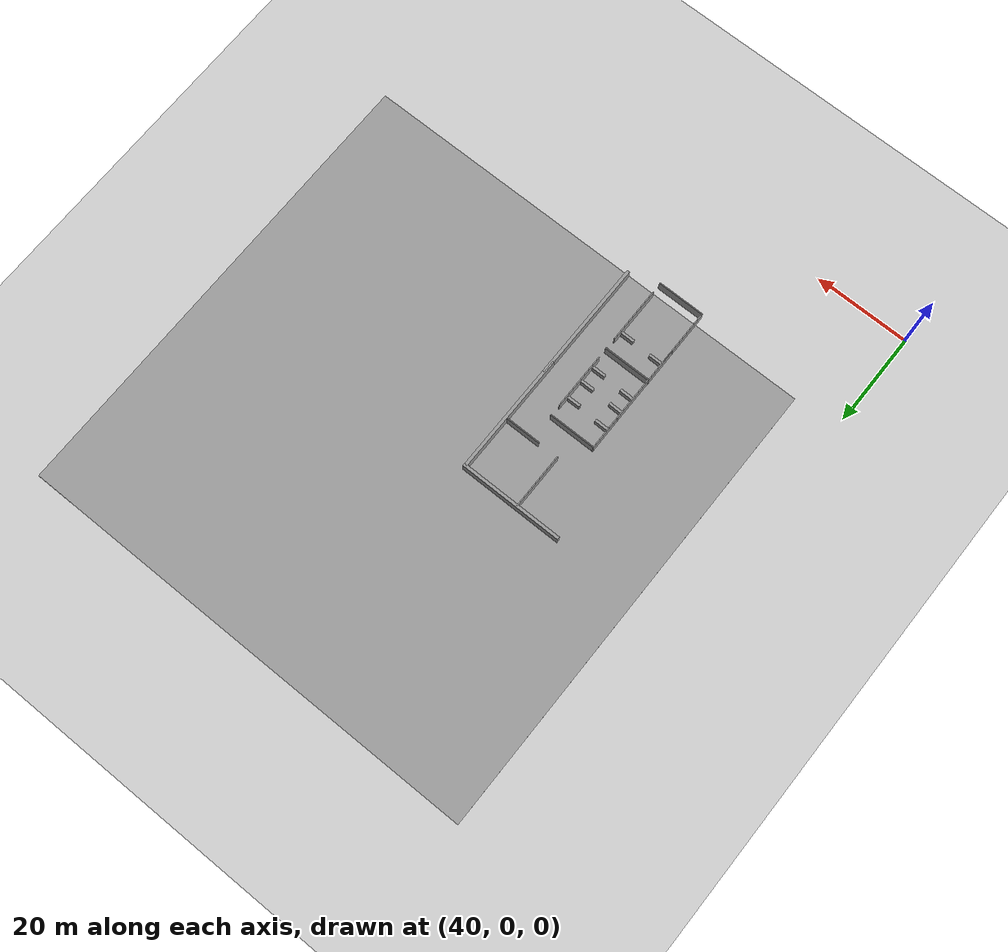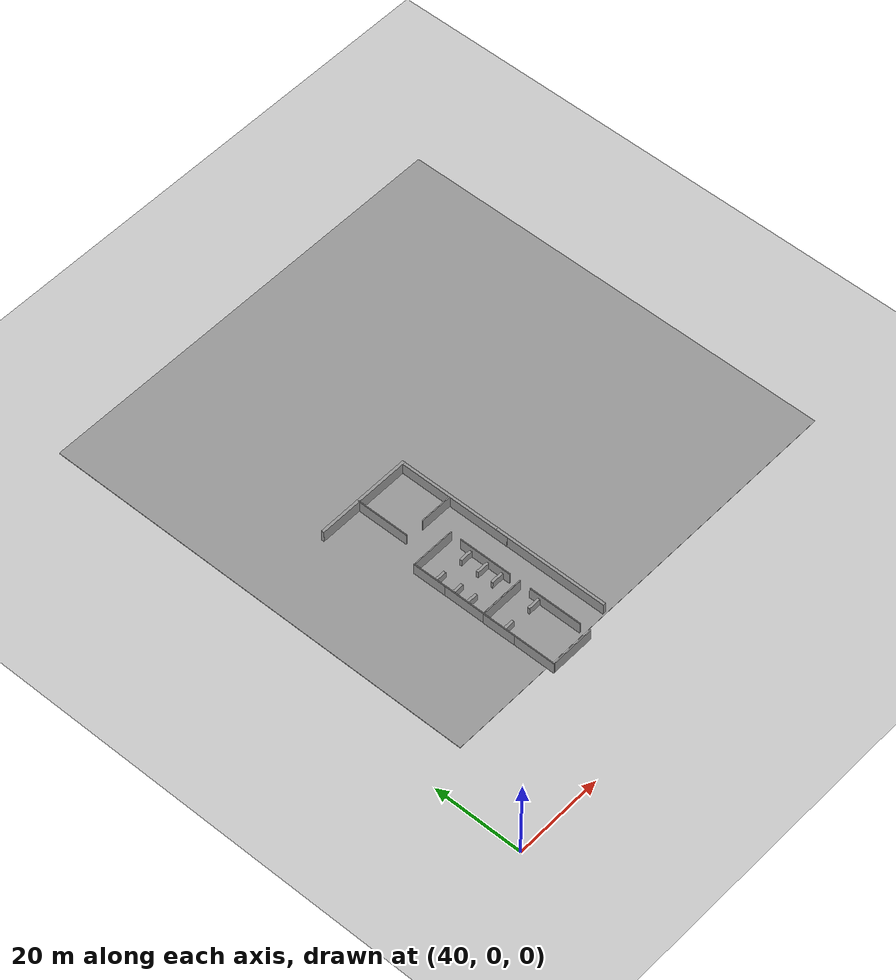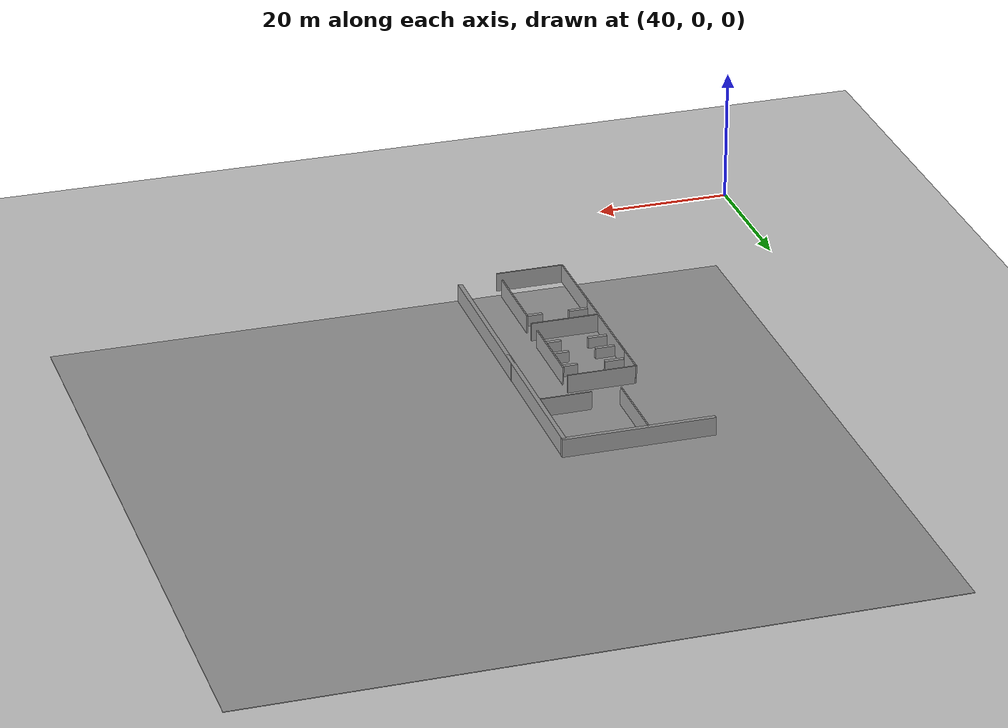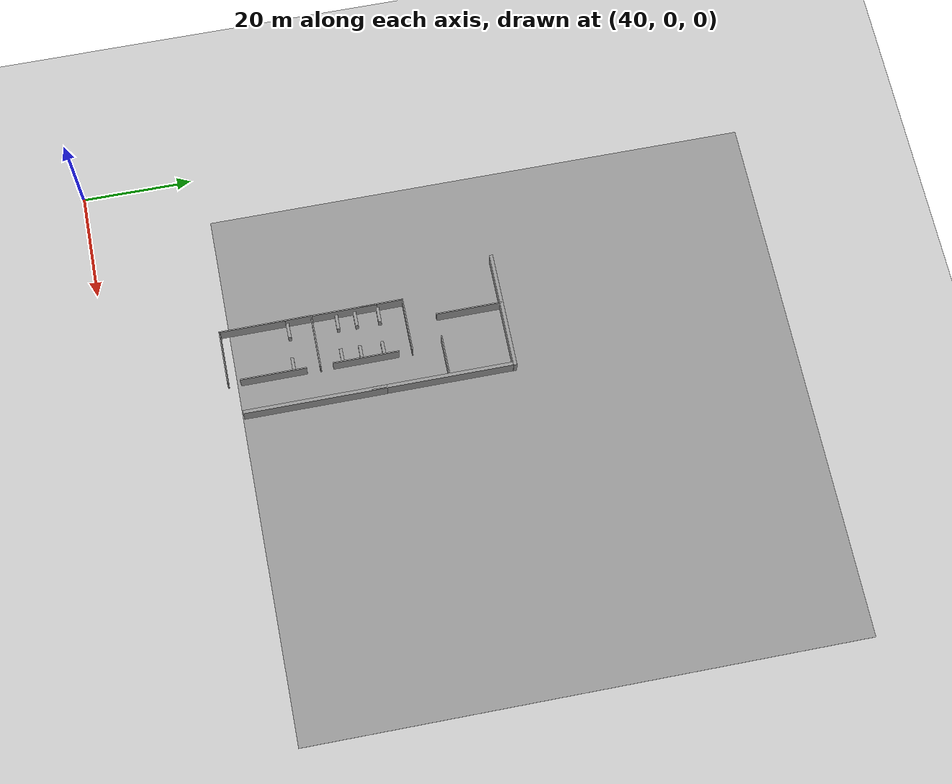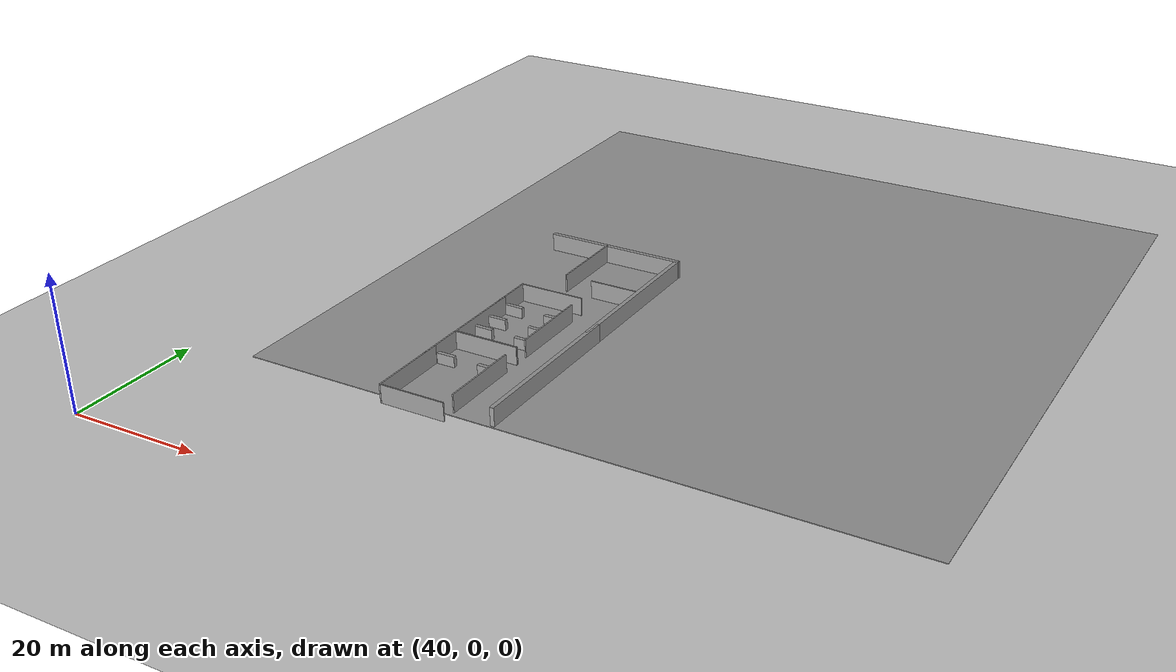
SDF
<sdf version="1.7">
 <world name="default">
  <model name="ground_plane">
   <static>1</static>
   <link name="link">
    <collision name="collision">
     <geometry><plane><normal>0 0 1</normal><size>100 100</size></plane></geometry>
     <surface><friction><ode><mu>100</mu><mu2>50</mu2></ode></friction></surface>
    </collision>
    <visual name="visual">
     <cast_shadows>0</cast_shadows>
     <geometry><plane><normal>0 0 1</normal><size>100 100</size></plane></geometry>
     <material>
      <script><uri>file://media/materials/scripts/gazebo.material</uri><name>Gazebo/Grey</name></script>
     </material>
    </visual>
   </link>
  </model>
  <model name="ground_plane_2">
   <static>1</static>
   <link name="link">
    <collision name="collision">
     <geometry><plane><normal>0 0 1</normal><size>100 100</size></plane></geometry>
     <surface><friction><ode><mu>100</mu><mu2>50</mu2></ode></friction></surface>
    </collision>
    <visual name="visual">
     <cast_shadows>0</cast_shadows>
     <geometry><plane><normal>0 0 1</normal><size>100 100</size></plane></geometry>
     <material>
      <script><uri>file://media/materials/scripts/gazebo.material</uri><name>Gazebo/Grey</name></script>
     </material>
    </visual>
   </link>
   <pose>99.3631 72.3911 0 0 -0 0</pose>
  </model>
  <model name="jiaoshi_clone_clone_clone_0_clone">
   <model name="grey_wall">
    <static>1</static>
    <link name="link">
     <pose>0 0 1.4 0 -0 0</pose>
     <collision name="collision"><geometry><box><size>7.5 0.2 2.8</size></box></geometry></collision>
     <visual name="visual">
      <cast_shadows>0</cast_shadows>
      <geometry><box><size>7.5 0.2 2.8</size></box></geometry>
      <material>
       <script>
        <uri>model://grey_wall/materials/scripts</uri>
        <uri>model://grey_wall/materials/textures</uri>
        <name>vrc/grey_wall</name>
       </script>
      </material>
     </visual>
    </link>
    <pose>-3.38172 4.2623 0 0 0 -1.56473</pose>
   </model>
   <model name="grey_wall_10m">
    <link name="link">
     <pose>1.25079 -0.023082 1.4 0 -0 0</pose>
     <inertial>
      <inertia><ixx>0</ixx><ixy>0</ixy><ixz>0</ixz><iyy>0</iyy><iyz>0</iyz><izz>0</izz></inertia>
      <mass>0</mass>
     </inertial>
     <visual name="visual">
      <cast_shadows>0</cast_shadows>
      <geometry><box><size>10.0157 0.2 2.8</size></box></geometry>
      <material>
       <script>
        <uri>model://grey_wall/materials/scripts</uri>
        <uri>model://grey_wall/materials/textures</uri>
        <name>vrc/grey_wall</name>
       </script>
       <shader type="pixel"/>
       <ambient>1 1 1 1</ambient>
       <diffuse>1 1 1 1</diffuse>
       <specular>0 0 0 1</specular>
       <emissive>0 0 0 1</emissive>
      </material>
     </visual>
     <collision name="collision">
      <geometry><box><size>10.0157 0.2 2.8</size></box></geometry>
      <surface>
       <friction>
        <ode><mu>1</mu><mu2>1</mu2><fdir1>0 0 0</fdir1><slip1>0</slip1><slip2>0</slip2></ode>
        <torsional>
         <coefficient>1</coefficient>
         <patch_radius>0</patch_radius>
         <surface_radius>0</surface_radius>
         <use_patch_radius>1</use_patch_radius>
         <ode><slip>0</slip></ode>
        </torsional>
       </friction>
       <bounce><restitution_coefficient>0</restitution_coefficient><threshold>1e+06</threshold></bounce>
       <contact>
        <collide_without_contact>0</collide_without_contact>
        <collide_without_contact_bitmask>1</collide_without_contact_bitmask>
        <collide_bitmask>1</collide_bitmask>
        <ode>
         <soft_cfm>0</soft_cfm>
         <soft_erp>0.2</soft_erp>
         <kp>1e+13</kp>
         <kd>1</kd>
         <max_vel>0.01</max_vel>
         <min_depth>0</min_depth>
        </ode>
        <bullet>
         <split_impulse>1</split_impulse>
         <split_impulse_penetration_threshold>-0.01</split_impulse_penetration_threshold>
         <soft_cfm>0</soft_cfm>
         <soft_erp>0.2</soft_erp>
         <kp>1e+13</kp>
         <kd>1</kd>
        </bullet>
       </contact>
      </surface>
     </collision>
    </link>
    <static>1</static>
    <pose>0.433183 -8.77625 0 0 -0 0</pose>
   </model>
   <model name="grey_wall_10m_0">
    <link name="link">
     <pose>1.25079 -0.023082 1.4 0 -0 0</pose>
     <inertial>
      <inertia><ixx>0</ixx><ixy>0</ixy><ixz>0</ixz><iyy>0</iyy><iyz>0</iyz><izz>0</izz></inertia>
      <mass>0</mass>
     </inertial>
     <visual name="visual">
      <cast_shadows>0</cast_shadows>
      <geometry><box><size>10.0157 0.2 2.8</size></box></geometry>
      <material>
       <script>
        <uri>model://grey_wall/materials/scripts</uri>
        <uri>model://grey_wall/materials/textures</uri>
        <name>vrc/grey_wall</name>
       </script>
       <shader type="pixel"/>
       <ambient>1 1 1 1</ambient>
       <diffuse>1 1 1 1</diffuse>
       <specular>0 0 0 1</specular>
       <emissive>0 0 0 1</emissive>
      </material>
     </visual>
     <collision name="collision">
      <geometry><box><size>10.0157 0.2 2.8</size></box></geometry>
      <surface>
       <friction>
        <ode><mu>1</mu><mu2>1</mu2><fdir1>0 0 0</fdir1><slip1>0</slip1><slip2>0</slip2></ode>
        <torsional>
         <coefficient>1</coefficient>
         <patch_radius>0</patch_radius>
         <surface_radius>0</surface_radius>
         <use_patch_radius>1</use_patch_radius>
         <ode><slip>0</slip></ode>
        </torsional>
       </friction>
       <bounce><restitution_coefficient>0</restitution_coefficient><threshold>1e+06</threshold></bounce>
       <contact>
        <collide_without_contact>0</collide_without_contact>
        <collide_without_contact_bitmask>1</collide_without_contact_bitmask>
        <collide_bitmask>1</collide_bitmask>
        <ode>
         <soft_cfm>0</soft_cfm>
         <soft_erp>0.2</soft_erp>
         <kp>1e+13</kp>
         <kd>1</kd>
         <max_vel>0.01</max_vel>
         <min_depth>0</min_depth>
        </ode>
        <bullet>
         <split_impulse>1</split_impulse>
         <split_impulse_penetration_threshold>-0.01</split_impulse_penetration_threshold>
         <soft_cfm>0</soft_cfm>
         <soft_erp>0.2</soft_erp>
         <kp>1e+13</kp>
         <kd>1</kd>
        </bullet>
       </contact>
      </surface>
     </collision>
    </link>
    <static>1</static>
    <pose>0.377364 7.92573 0 0 -0 0</pose>
   </model>
   <model name="grey_wall_12m_vertial">
    <link name="link">
     <pose>0.289112 -0.003891 1.4 0 0 -1.5701</pose>
     <inertial>
      <inertia><ixx>0</ixx><ixy>0</ixy><ixz>0</ixz><iyy>0</iyy><iyz>0</iyz><izz>0</izz></inertia>
      <mass>0</mass>
     </inertial>
     <visual name="visual">
      <cast_shadows>0</cast_shadows>
      <geometry><box><size>12.0527 0.2 2.8</size></box></geometry>
      <material>
       <script>
        <uri>model://grey_wall/materials/scripts</uri>
        <uri>model://grey_wall/materials/textures</uri>
        <name>vrc/grey_wall</name>
       </script>
       <shader type="pixel"/>
       <ambient>1 1 1 1</ambient>
       <diffuse>1 1 1 1</diffuse>
       <specular>0 0 0 1</specular>
       <emissive>0 0 0 1</emissive>
      </material>
     </visual>
     <collision name="collision">
      <geometry><box><size>12.0527 0.2 2.8</size></box></geometry>
      <surface>
       <friction>
        <ode><mu>1</mu><mu2>1</mu2><fdir1>0 0 0</fdir1><slip1>0</slip1><slip2>0</slip2></ode>
        <torsional>
         <coefficient>1</coefficient>
         <patch_radius>0</patch_radius>
         <surface_radius>0</surface_radius>
         <use_patch_radius>1</use_patch_radius>
         <ode><slip>0</slip></ode>
        </torsional>
       </friction>
       <bounce><restitution_coefficient>0</restitution_coefficient><threshold>1e+06</threshold></bounce>
       <contact>
        <collide_without_contact>0</collide_without_contact>
        <collide_without_contact_bitmask>1</collide_without_contact_bitmask>
        <collide_bitmask>1</collide_bitmask>
        <ode>
         <soft_cfm>0</soft_cfm>
         <soft_erp>0.2</soft_erp>
         <kp>1e+13</kp>
         <kd>1</kd>
         <max_vel>0.01</max_vel>
         <min_depth>0</min_depth>
        </ode>
        <bullet>
         <split_impulse>1</split_impulse>
         <split_impulse_penetration_threshold>-0.01</split_impulse_penetration_threshold>
         <soft_cfm>0</soft_cfm>
         <soft_erp>0.2</soft_erp>
         <kp>1e+13</kp>
         <kd>1</kd>
        </bullet>
       </contact>
      </surface>
     </collision>
    </link>
    <static>1</static>
    <pose>-3.63668 -2.87268 0 0 -0 0</pose>
   </model>
   <model name="grey_wall_12m_vertial_0">
    <link name="link">
     <pose>0.289112 -0.003891 1.4 0 0 -1.5701</pose>
     <inertial>
      <inertia><ixx>0</ixx><ixy>0</ixy><ixz>0</ixz><iyy>0</iyy><iyz>0</iyz><izz>0</izz></inertia>
      <mass>0</mass>
     </inertial>
     <visual name="visual">
      <cast_shadows>0</cast_shadows>
      <geometry><box><size>12.0527 0.2 2.8</size></box></geometry>
      <material>
       <script>
        <uri>model://grey_wall/materials/scripts</uri>
        <uri>model://grey_wall/materials/textures</uri>
        <name>vrc/grey_wall</name>
       </script>
       <shader type="pixel"/>
       <ambient>1 1 1 1</ambient>
       <diffuse>1 1 1 1</diffuse>
       <specular>0 0 0 1</specular>
       <emissive>0 0 0 1</emissive>
      </material>
     </visual>
     <collision name="collision">
      <geometry><box><size>12.0527 0.2 2.8</size></box></geometry>
      <surface>
       <friction>
        <ode><mu>1</mu><mu2>1</mu2><fdir1>0 0 0</fdir1><slip1>0</slip1><slip2>0</slip2></ode>
        <torsional>
         <coefficient>1</coefficient>
         <patch_radius>0</patch_radius>
         <surface_radius>0</surface_radius>
         <use_patch_radius>1</use_patch_radius>
         <ode><slip>0</slip></ode>
        </torsional>
       </friction>
       <bounce><restitution_coefficient>0</restitution_coefficient><threshold>1e+06</threshold></bounce>
       <contact>
        <collide_without_contact>0</collide_without_contact>
        <collide_without_contact_bitmask>1</collide_without_contact_bitmask>
        <collide_bitmask>1</collide_bitmask>
        <ode>
         <soft_cfm>0</soft_cfm>
         <soft_erp>0.2</soft_erp>
         <kp>1e+13</kp>
         <kd>1</kd>
         <max_vel>0.01</max_vel>
         <min_depth>0</min_depth>
        </ode>
        <bullet>
         <split_impulse>1</split_impulse>
         <split_impulse_penetration_threshold>-0.01</split_impulse_penetration_threshold>
         <soft_cfm>0</soft_cfm>
         <soft_erp>0.2</soft_erp>
         <kp>1e+13</kp>
         <kd>1</kd>
        </bullet>
       </contact>
      </surface>
     </collision>
    </link>
    <static>1</static>
    <pose>6.20786 -0.539083 0 0 -0 0</pose>
   </model>
   <static>0</static>
   <pose>76.0453 46.3831 0 0 -0 0</pose>
  </model>
  <model name="jiaoshi_clone_clone_clone_0_clone_0">
   <model name="grey_wall">
    <static>1</static>
    <link name="link">
     <pose>0 0 1.4 0 -0 0</pose>
     <collision name="collision"><geometry><box><size>7.5 0.2 2.8</size></box></geometry></collision>
     <visual name="visual">
      <cast_shadows>0</cast_shadows>
      <geometry><box><size>7.5 0.2 2.8</size></box></geometry>
      <material>
       <script>
        <uri>model://grey_wall/materials/scripts</uri>
        <uri>model://grey_wall/materials/textures</uri>
        <name>vrc/grey_wall</name>
       </script>
      </material>
     </visual>
    </link>
    <pose>-3.38172 4.2623 0 0 0 -1.56473</pose>
   </model>
   <model name="grey_wall_10m">
    <link name="link">
     <pose>1.25079 -0.023082 1.4 0 -0 0</pose>
     <inertial>
      <inertia><ixx>0</ixx><ixy>0</ixy><ixz>0</ixz><iyy>0</iyy><iyz>0</iyz><izz>0</izz></inertia>
      <mass>0</mass>
     </inertial>
     <visual name="visual">
      <cast_shadows>0</cast_shadows>
      <geometry><box><size>10.0157 0.2 2.8</size></box></geometry>
      <material>
       <script>
        <uri>model://grey_wall/materials/scripts</uri>
        <uri>model://grey_wall/materials/textures</uri>
        <name>vrc/grey_wall</name>
       </script>
       <shader type="pixel"/>
       <ambient>1 1 1 1</ambient>
       <diffuse>1 1 1 1</diffuse>
       <specular>0 0 0 1</specular>
       <emissive>0 0 0 1</emissive>
      </material>
     </visual>
     <collision name="collision">
      <geometry><box><size>10.0157 0.2 2.8</size></box></geometry>
      <surface>
       <friction>
        <ode><mu>1</mu><mu2>1</mu2><fdir1>0 0 0</fdir1><slip1>0</slip1><slip2>0</slip2></ode>
        <torsional>
         <coefficient>1</coefficient>
         <patch_radius>0</patch_radius>
         <surface_radius>0</surface_radius>
         <use_patch_radius>1</use_patch_radius>
         <ode><slip>0</slip></ode>
        </torsional>
       </friction>
       <bounce><restitution_coefficient>0</restitution_coefficient><threshold>1e+06</threshold></bounce>
       <contact>
        <collide_without_contact>0</collide_without_contact>
        <collide_without_contact_bitmask>1</collide_without_contact_bitmask>
        <collide_bitmask>1</collide_bitmask>
        <ode>
         <soft_cfm>0</soft_cfm>
         <soft_erp>0.2</soft_erp>
         <kp>1e+13</kp>
         <kd>1</kd>
         <max_vel>0.01</max_vel>
         <min_depth>0</min_depth>
        </ode>
        <bullet>
         <split_impulse>1</split_impulse>
         <split_impulse_penetration_threshold>-0.01</split_impulse_penetration_threshold>
         <soft_cfm>0</soft_cfm>
         <soft_erp>0.2</soft_erp>
         <kp>1e+13</kp>
         <kd>1</kd>
        </bullet>
       </contact>
      </surface>
     </collision>
    </link>
    <static>1</static>
    <pose>0.433183 -8.77625 0 0 -0 0</pose>
   </model>
   <model name="grey_wall_10m_0">
    <link name="link">
     <pose>1.25079 -0.023082 1.4 0 -0 0</pose>
     <inertial>
      <inertia><ixx>0</ixx><ixy>0</ixy><ixz>0</ixz><iyy>0</iyy><iyz>0</iyz><izz>0</izz></inertia>
      <mass>0</mass>
     </inertial>
     <visual name="visual">
      <cast_shadows>0</cast_shadows>
      <geometry><box><size>10.0157 0.2 2.8</size></box></geometry>
      <material>
       <script>
        <uri>model://grey_wall/materials/scripts</uri>
        <uri>model://grey_wall/materials/textures</uri>
        <name>vrc/grey_wall</name>
       </script>
       <shader type="pixel"/>
       <ambient>1 1 1 1</ambient>
       <diffuse>1 1 1 1</diffuse>
       <specular>0 0 0 1</specular>
       <emissive>0 0 0 1</emissive>
      </material>
     </visual>
     <collision name="collision">
      <geometry><box><size>10.0157 0.2 2.8</size></box></geometry>
      <surface>
       <friction>
        <ode><mu>1</mu><mu2>1</mu2><fdir1>0 0 0</fdir1><slip1>0</slip1><slip2>0</slip2></ode>
        <torsional>
         <coefficient>1</coefficient>
         <patch_radius>0</patch_radius>
         <surface_radius>0</surface_radius>
         <use_patch_radius>1</use_patch_radius>
         <ode><slip>0</slip></ode>
        </torsional>
       </friction>
       <bounce><restitution_coefficient>0</restitution_coefficient><threshold>1e+06</threshold></bounce>
       <contact>
        <collide_without_contact>0</collide_without_contact>
        <collide_without_contact_bitmask>1</collide_without_contact_bitmask>
        <collide_bitmask>1</collide_bitmask>
        <ode>
         <soft_cfm>0</soft_cfm>
         <soft_erp>0.2</soft_erp>
         <kp>1e+13</kp>
         <kd>1</kd>
         <max_vel>0.01</max_vel>
         <min_depth>0</min_depth>
        </ode>
        <bullet>
         <split_impulse>1</split_impulse>
         <split_impulse_penetration_threshold>-0.01</split_impulse_penetration_threshold>
         <soft_cfm>0</soft_cfm>
         <soft_erp>0.2</soft_erp>
         <kp>1e+13</kp>
         <kd>1</kd>
        </bullet>
       </contact>
      </surface>
     </collision>
    </link>
    <static>1</static>
    <pose>0.377364 7.92573 0 0 -0 0</pose>
   </model>
   <model name="grey_wall_12m_vertial">
    <link name="link">
     <pose>0.289112 -0.003891 1.4 0 0 -1.5701</pose>
     <inertial>
      <inertia><ixx>0</ixx><ixy>0</ixy><ixz>0</ixz><iyy>0</iyy><iyz>0</iyz><izz>0</izz></inertia>
      <mass>0</mass>
     </inertial>
     <visual name="visual">
      <cast_shadows>0</cast_shadows>
      <geometry><box><size>12.0527 0.2 2.8</size></box></geometry>
      <material>
       <script>
        <uri>model://grey_wall/materials/scripts</uri>
        <uri>model://grey_wall/materials/textures</uri>
        <name>vrc/grey_wall</name>
       </script>
       <shader type="pixel"/>
       <ambient>1 1 1 1</ambient>
       <diffuse>1 1 1 1</diffuse>
       <specular>0 0 0 1</specular>
       <emissive>0 0 0 1</emissive>
      </material>
     </visual>
     <collision name="collision">
      <geometry><box><size>12.0527 0.2 2.8</size></box></geometry>
      <surface>
       <friction>
        <ode><mu>1</mu><mu2>1</mu2><fdir1>0 0 0</fdir1><slip1>0</slip1><slip2>0</slip2></ode>
        <torsional>
         <coefficient>1</coefficient>
         <patch_radius>0</patch_radius>
         <surface_radius>0</surface_radius>
         <use_patch_radius>1</use_patch_radius>
         <ode><slip>0</slip></ode>
        </torsional>
       </friction>
       <bounce><restitution_coefficient>0</restitution_coefficient><threshold>1e+06</threshold></bounce>
       <contact>
        <collide_without_contact>0</collide_without_contact>
        <collide_without_contact_bitmask>1</collide_without_contact_bitmask>
        <collide_bitmask>1</collide_bitmask>
        <ode>
         <soft_cfm>0</soft_cfm>
         <soft_erp>0.2</soft_erp>
         <kp>1e+13</kp>
         <kd>1</kd>
         <max_vel>0.01</max_vel>
         <min_depth>0</min_depth>
        </ode>
        <bullet>
         <split_impulse>1</split_impulse>
         <split_impulse_penetration_threshold>-0.01</split_impulse_penetration_threshold>
         <soft_cfm>0</soft_cfm>
         <soft_erp>0.2</soft_erp>
         <kp>1e+13</kp>
         <kd>1</kd>
        </bullet>
       </contact>
      </surface>
     </collision>
    </link>
    <static>1</static>
    <pose>-3.63668 -2.87268 0 0 -0 0</pose>
   </model>
   <model name="grey_wall_12m_vertial_0">
    <link name="link">
     <pose>0.289112 -0.003891 1.4 0 0 -1.5701</pose>
     <inertial>
      <inertia><ixx>0</ixx><ixy>0</ixy><ixz>0</ixz><iyy>0</iyy><iyz>0</iyz><izz>0</izz></inertia>
      <mass>0</mass>
     </inertial>
     <visual name="visual">
      <cast_shadows>0</cast_shadows>
      <geometry><box><size>12.0527 0.2 2.8</size></box></geometry>
      <material>
       <script>
        <uri>model://grey_wall/materials/scripts</uri>
        <uri>model://grey_wall/materials/textures</uri>
        <name>vrc/grey_wall</name>
       </script>
       <shader type="pixel"/>
       <ambient>1 1 1 1</ambient>
       <diffuse>1 1 1 1</diffuse>
       <specular>0 0 0 1</specular>
       <emissive>0 0 0 1</emissive>
      </material>
     </visual>
     <collision name="collision">
      <geometry><box><size>12.0527 0.2 2.8</size></box></geometry>
      <surface>
       <friction>
        <ode><mu>1</mu><mu2>1</mu2><fdir1>0 0 0</fdir1><slip1>0</slip1><slip2>0</slip2></ode>
        <torsional>
         <coefficient>1</coefficient>
         <patch_radius>0</patch_radius>
         <surface_radius>0</surface_radius>
         <use_patch_radius>1</use_patch_radius>
         <ode><slip>0</slip></ode>
        </torsional>
       </friction>
       <bounce><restitution_coefficient>0</restitution_coefficient><threshold>1e+06</threshold></bounce>
       <contact>
        <collide_without_contact>0</collide_without_contact>
        <collide_without_contact_bitmask>1</collide_without_contact_bitmask>
        <collide_bitmask>1</collide_bitmask>
        <ode>
         <soft_cfm>0</soft_cfm>
         <soft_erp>0.2</soft_erp>
         <kp>1e+13</kp>
         <kd>1</kd>
         <max_vel>0.01</max_vel>
         <min_depth>0</min_depth>
        </ode>
        <bullet>
         <split_impulse>1</split_impulse>
         <split_impulse_penetration_threshold>-0.01</split_impulse_penetration_threshold>
         <soft_cfm>0</soft_cfm>
         <soft_erp>0.2</soft_erp>
         <kp>1e+13</kp>
         <kd>1</kd>
        </bullet>
       </contact>
      </surface>
     </collision>
    </link>
    <static>1</static>
    <pose>6.20786 -0.539083 0 0 -0 0</pose>
   </model>
   <static>0</static>
   <pose>76.058 29.6154 0 0 -0 0</pose>
  </model>
  <model name="grew_wall_long_vertial_1_clone_clone_1_clone_0">
   <model name="grey_wall_long">
    <link name="link">
     <pose>0 0 1.37589 0 -0 0</pose>
     <inertial>
      <inertia><ixx>0</ixx><ixy>0</ixy><ixz>0</ixz><iyy>0</iyy><iyz>0</iyz><izz>0</izz></inertia>
      <mass>0</mass>
     </inertial>
     <visual name="visual">
      <cast_shadows>0</cast_shadows>
      <geometry><box><size>25.8815 0.642976 2.8</size></box></geometry>
      <material>
       <script>
        <uri>model://grey_wall/materials/scripts</uri>
        <uri>model://grey_wall/materials/textures</uri>
        <name>vrc/grey_wall</name>
       </script>
       <shader type="pixel"><normal_map>__default__</normal_map></shader>
       <ambient>1 1 1 1</ambient>
       <diffuse>1 1 1 1</diffuse>
       <specular>0 0 0 1</specular>
       <emissive>0 0 0 1</emissive>
      </material>
     </visual>
     <collision name="collision">
      <geometry><box><size>25.8815 0.642976 2.8</size></box></geometry>
      <surface>
       <friction>
        <ode><mu>1</mu><mu2>1</mu2><fdir1>0 0 0</fdir1><slip1>0</slip1><slip2>0</slip2></ode>
        <torsional>
         <coefficient>1</coefficient>
         <patch_radius>0</patch_radius>
         <surface_radius>0</surface_radius>
         <use_patch_radius>1</use_patch_radius>
         <ode><slip>0</slip></ode>
        </torsional>
       </friction>
       <bounce><restitution_coefficient>0</restitution_coefficient><threshold>1e+06</threshold></bounce>
       <contact>
        <collide_without_contact>0</collide_without_contact>
        <collide_without_contact_bitmask>1</collide_without_contact_bitmask>
        <collide_bitmask>1</collide_bitmask>
        <ode>
         <soft_cfm>0</soft_cfm>
         <soft_erp>0.2</soft_erp>
         <kp>1e+13</kp>
         <kd>1</kd>
         <max_vel>0.01</max_vel>
         <min_depth>0</min_depth>
        </ode>
        <bullet>
         <split_impulse>1</split_impulse>
         <split_impulse_penetration_threshold>-0.01</split_impulse_penetration_threshold>
         <soft_cfm>0</soft_cfm>
         <soft_erp>0.2</soft_erp>
         <kp>1e+13</kp>
         <kd>1</kd>
        </bullet>
       </contact>
      </surface>
     </collision>
    </link>
    <static>1</static>
    <pose>1e-06 -0 0 0 -0 1.57003</pose>
   </model>
   <static>0</static>
   <pose>88.8179 35.6019 0 0 -0 0</pose>
  </model>
  <model name="grew_wall_long_vertial_1_clone_clone_1_clone_1">
   <model name="grey_wall_long">
    <link name="link">
     <pose>0 0 1.37589 0 -0 0</pose>
     <inertial>
      <inertia><ixx>0</ixx><ixy>0</ixy><ixz>0</ixz><iyy>0</iyy><iyz>0</iyz><izz>0</izz></inertia>
      <mass>0</mass>
     </inertial>
     <visual name="visual">
      <cast_shadows>0</cast_shadows>
      <geometry><box><size>25.8815 0.642976 2.8</size></box></geometry>
      <material>
       <script>
        <uri>model://grey_wall/materials/scripts</uri>
        <uri>model://grey_wall/materials/textures</uri>
        <name>vrc/grey_wall</name>
       </script>
       <shader type="pixel"><normal_map>__default__</normal_map></shader>
       <ambient>1 1 1 1</ambient>
       <diffuse>1 1 1 1</diffuse>
       <specular>0 0 0 1</specular>
       <emissive>0 0 0 1</emissive>
      </material>
     </visual>
     <collision name="collision">
      <geometry><box><size>25.8815 0.642976 2.8</size></box></geometry>
      <surface>
       <friction>
        <ode><mu>1</mu><mu2>1</mu2><fdir1>0 0 0</fdir1><slip1>0</slip1><slip2>0</slip2></ode>
        <torsional>
         <coefficient>1</coefficient>
         <patch_radius>0</patch_radius>
         <surface_radius>0</surface_radius>
         <use_patch_radius>1</use_patch_radius>
         <ode><slip>0</slip></ode>
        </torsional>
       </friction>
       <bounce><restitution_coefficient>0</restitution_coefficient><threshold>1e+06</threshold></bounce>
       <contact>
        <collide_without_contact>0</collide_without_contact>
        <collide_without_contact_bitmask>1</collide_without_contact_bitmask>
        <collide_bitmask>1</collide_bitmask>
        <ode>
         <soft_cfm>0</soft_cfm>
         <soft_erp>0.2</soft_erp>
         <kp>1e+13</kp>
         <kd>1</kd>
         <max_vel>0.01</max_vel>
         <min_depth>0</min_depth>
        </ode>
        <bullet>
         <split_impulse>1</split_impulse>
         <split_impulse_penetration_threshold>-0.01</split_impulse_penetration_threshold>
         <soft_cfm>0</soft_cfm>
         <soft_erp>0.2</soft_erp>
         <kp>1e+13</kp>
         <kd>1</kd>
        </bullet>
       </contact>
      </surface>
     </collision>
    </link>
    <static>1</static>
    <pose>1e-06 -0 0 0 -0 1.57003</pose>
   </model>
   <static>0</static>
   <pose>88.8126 58.7743 0 0 -0 0</pose>
  </model>
  <model name="grey_wall_long_term_clone_0_clone">
   <link name="link">
    <pose>-1.74587 -0.378849 1.37589 0 -0 0</pose>
    <inertial>
     <inertia><ixx>0</ixx><ixy>0</ixy><ixz>0</ixz><iyy>0</iyy><iyz>0</iyz><izz>0</izz></inertia>
     <mass>0</mass>
    </inertial>
    <visual name="visual">
     <cast_shadows>0</cast_shadows>
     <geometry><box><size>22.1596 0.642976 2.8</size></box></geometry>
     <material>
      <script>
       <uri>model://grey_wall/materials/scripts</uri>
       <uri>model://grey_wall/materials/textures</uri>
       <name>vrc/grey_wall</name>
      </script>
      <shader type="pixel"><normal_map>__default__</normal_map></shader>
      <ambient>1 1 1 1</ambient>
      <diffuse>1 1 1 1</diffuse>
      <specular>0 0 0 1</specular>
      <emissive>0 0 0 1</emissive>
     </material>
    </visual>
    <collision name="collision">
     <geometry><box><size>22.1596 0.642976 2.8</size></box></geometry>
     <surface>
      <friction>
       <ode><mu>1</mu><mu2>1</mu2><fdir1>0 0 0</fdir1><slip1>0</slip1><slip2>0</slip2></ode>
       <torsional>
        <coefficient>1</coefficient>
        <patch_radius>0</patch_radius>
        <surface_radius>0</surface_radius>
        <use_patch_radius>1</use_patch_radius>
        <ode><slip>0</slip></ode>
       </torsional>
      </friction>
      <bounce><restitution_coefficient>0</restitution_coefficient><threshold>1e+06</threshold></bounce>
      <contact>
       <collide_without_contact>0</collide_without_contact>
       <collide_without_contact_bitmask>1</collide_without_contact_bitmask>
       <collide_bitmask>1</collide_bitmask>
       <ode>
        <soft_cfm>0</soft_cfm>
        <soft_erp>0.2</soft_erp>
        <kp>1e+13</kp>
        <kd>1</kd>
        <max_vel>0.01</max_vel>
        <min_depth>0</min_depth>
       </ode>
       <bullet>
        <split_impulse>1</split_impulse>
        <split_impulse_penetration_threshold>-0.01</split_impulse_penetration_threshold>
        <soft_cfm>0</soft_cfm>
        <soft_erp>0.2</soft_erp>
        <kp>1e+13</kp>
        <kd>1</kd>
       </bullet>
      </contact>
     </surface>
    </collision>
   </link>
   <static>1</static>
   <pose>79.8463 72.1693 0 0 -0 0</pose>
  </model>
  <model name="grey_wall_12m_vertial_1_clone_0">
   <link name="link">
    <pose>0.289112 -0.003891 1.4 0 0 -1.5701</pose>
    <inertial>
     <inertia><ixx>0</ixx><ixy>0</ixy><ixz>0</ixz><iyy>0</iyy><iyz>0</iyz><izz>0</izz></inertia>
     <mass>0</mass>
    </inertial>
    <visual name="visual">
     <cast_shadows>0</cast_shadows>
     <geometry><box><size>12.0527 0.2 2.8</size></box></geometry>
     <material>
      <script>
       <uri>model://grey_wall/materials/scripts</uri>
       <uri>model://grey_wall/materials/textures</uri>
       <name>vrc/grey_wall</name>
      </script>
      <shader type="pixel"/>
      <ambient>1 1 1 1</ambient>
      <diffuse>1 1 1 1</diffuse>
      <specular>0 0 0 1</specular>
      <emissive>0 0 0 1</emissive>
     </material>
    </visual>
    <collision name="collision">
     <geometry><box><size>12.0527 0.2 2.8</size></box></geometry>
     <surface>
      <friction>
       <ode><mu>1</mu><mu2>1</mu2><fdir1>0 0 0</fdir1><slip1>0</slip1><slip2>0</slip2></ode>
       <torsional>
        <coefficient>1</coefficient>
        <patch_radius>0</patch_radius>
        <surface_radius>0</surface_radius>
        <use_patch_radius>1</use_patch_radius>
        <ode><slip>0</slip></ode>
       </torsional>
      </friction>
      <bounce><restitution_coefficient>0</restitution_coefficient><threshold>1e+06</threshold></bounce>
      <contact>
       <collide_without_contact>0</collide_without_contact>
       <collide_without_contact_bitmask>1</collide_without_contact_bitmask>
       <collide_bitmask>1</collide_bitmask>
       <ode>
        <soft_cfm>0</soft_cfm>
        <soft_erp>0.2</soft_erp>
        <kp>1e+13</kp>
        <kd>1</kd>
        <max_vel>0.01</max_vel>
        <min_depth>0</min_depth>
       </ode>
       <bullet>
        <split_impulse>1</split_impulse>
        <split_impulse_penetration_threshold>-0.01</split_impulse_penetration_threshold>
        <soft_cfm>0</soft_cfm>
        <soft_erp>0.2</soft_erp>
        <kp>1e+13</kp>
        <kd>1</kd>
       </bullet>
      </contact>
     </surface>
    </collision>
   </link>
   <static>1</static>
   <pose>76.3792 65.8166 0 0 -0 0</pose>
  </model>
  <model name="unit_box_clone_34">
   <pose>74.2832 49.6021 0.834396 0 -3.2e-05 -0.013006</pose>
   <link name="link">
    <inertial>
     <mass>1</mass>
     <inertia>
      <ixx>0.166667</ixx>
      <ixy>0</ixy>
      <ixz>0</ixz>
      <iyy>0.166667</iyy>
      <iyz>0</iyz>
      <izz>0.166667</izz>
     </inertia>
    </inertial>
    <collision name="collision"><geometry><box><size>2.81196 0.562598 1.66888</size></box></geometry></collision>
    <visual name="visual">
     <geometry><box><size>2.81196 0.562598 1.66888</size></box></geometry>
     <material>
      <script><name>Gazebo/Grey</name><uri>file://media/materials/scripts/gazebo.material</uri></script>
     </material>
    </visual>
   </link>
  </model>
  <model name="unit_box_clone_35">
   <pose>81.0255 49.2604 0.834396 -0 -3.2e-05 0.009792</pose>
   <link name="link">
    <inertial>
     <mass>1</mass>
     <inertia>
      <ixx>0.166667</ixx>
      <ixy>0</ixy>
      <ixz>0</ixz>
      <iyy>0.166667</iyy>
      <iyz>0</iyz>
      <izz>0.166667</izz>
     </inertia>
    </inertial>
    <collision name="collision"><geometry><box><size>2.81196 0.562598 1.66888</size></box></geometry></collision>
    <visual name="visual">
     <geometry><box><size>2.81196 0.562598 1.66888</size></box></geometry>
     <material>
      <script><name>Gazebo/Grey</name><uri>file://media/materials/scripts/gazebo.material</uri></script>
     </material>
    </visual>
   </link>
  </model>
  <model name="unit_box_clone_36">
   <pose>74.2816 45.3762 0.834396 -0 -3.2e-05 -0.002323</pose>
   <link name="link">
    <inertial>
     <mass>1</mass>
     <inertia>
      <ixx>0.166667</ixx>
      <ixy>0</ixy>
      <ixz>0</ixz>
      <iyy>0.166667</iyy>
      <iyz>0</iyz>
      <izz>0.166667</izz>
     </inertia>
    </inertial>
    <collision name="collision"><geometry><box><size>2.81196 0.562598 1.66888</size></box></geometry></collision>
    <visual name="visual">
     <geometry><box><size>2.81196 0.562598 1.66888</size></box></geometry>
     <material>
      <script><name>Gazebo/Grey</name><uri>file://media/materials/scripts/gazebo.material</uri></script>
     </material>
    </visual>
   </link>
  </model>
  <model name="unit_box_clone_37">
   <pose>81.024 45.1725 0.834396 -0 -3.2e-05 -0.006208</pose>
   <link name="link">
    <inertial>
     <mass>1</mass>
     <inertia>
      <ixx>0.166667</ixx>
      <ixy>0</ixy>
      <ixz>0</ixz>
      <iyy>0.166667</iyy>
      <iyz>0</iyz>
      <izz>0.166667</izz>
     </inertia>
    </inertial>
    <collision name="collision"><geometry><box><size>2.81196 0.562598 1.66888</size></box></geometry></collision>
    <visual name="visual">
     <geometry><box><size>2.81196 0.562598 1.66888</size></box></geometry>
     <material>
      <script><name>Gazebo/Grey</name><uri>file://media/materials/scripts/gazebo.material</uri></script>
     </material>
    </visual>
   </link>
  </model>
  <model name="unit_box_clone_38">
   <pose>74.283 42.0046 0.834396 0 -3.2e-05 -0.008774</pose>
   <link name="link">
    <inertial>
     <mass>1</mass>
     <inertia>
      <ixx>0.166667</ixx>
      <ixy>0</ixy>
      <ixz>0</ixz>
      <iyy>0.166667</iyy>
      <iyz>0</iyz>
      <izz>0.166667</izz>
     </inertia>
    </inertial>
    <collision name="collision"><geometry><box><size>2.81196 0.562598 1.66888</size></box></geometry></collision>
    <visual name="visual">
     <geometry><box><size>2.81196 0.562598 1.66888</size></box></geometry>
     <material>
      <script><name>Gazebo/Grey</name><uri>file://media/materials/scripts/gazebo.material</uri></script>
     </material>
    </visual>
   </link>
  </model>
  <model name="unit_box_clone_39">
   <pose>81.0046 41.6897 0.834396 0 3.2e-05 -0.003511</pose>
   <link name="link">
    <inertial>
     <mass>1</mass>
     <inertia>
      <ixx>0.166667</ixx>
      <ixy>0</ixy>
      <ixz>0</ixz>
      <iyy>0.166667</iyy>
      <iyz>0</iyz>
      <izz>0.166667</izz>
     </inertia>
    </inertial>
    <collision name="collision"><geometry><box><size>2.81196 0.562598 1.66888</size></box></geometry></collision>
    <visual name="visual">
     <geometry><box><size>2.81196 0.562598 1.66888</size></box></geometry>
     <material>
      <script><name>Gazebo/Grey</name><uri>file://media/materials/scripts/gazebo.material</uri></script>
     </material>
    </visual>
   </link>
  </model>
  <model name="unit_box_clone_40">
   <pose>74.253 33.0948 0.834396 -0 3.2e-05 0.007245</pose>
   <link name="link">
    <inertial>
     <mass>1</mass>
     <inertia>
      <ixx>0.166667</ixx>
      <ixy>0</ixy>
      <ixz>0</ixz>
      <iyy>0.166667</iyy>
      <iyz>0</iyz>
      <izz>0.166667</izz>
     </inertia>
    </inertial>
    <collision name="collision"><geometry><box><size>2.81196 0.562598 1.66888</size></box></geometry></collision>
    <visual name="visual">
     <geometry><box><size>2.81196 0.562598 1.66888</size></box></geometry>
     <material>
      <script><name>Gazebo/Grey</name><uri>file://media/materials/scripts/gazebo.material</uri></script>
     </material>
    </visual>
   </link>
  </model>
  <model name="unit_box_clone_41">
   <pose>81.0183 32.8381 0.834396 0 3.2e-05 -0.005092</pose>
   <link name="link">
    <inertial>
     <mass>1</mass>
     <inertia>
      <ixx>0.166667</ixx>
      <ixy>0</ixy>
      <ixz>0</ixz>
      <iyy>0.166667</iyy>
      <iyz>0</iyz>
      <izz>0.166667</izz>
     </inertia>
    </inertial>
    <collision name="collision"><geometry><box><size>2.81196 0.562598 1.66888</size></box></geometry></collision>
    <visual name="visual">
     <geometry><box><size>2.81196 0.562598 1.66888</size></box></geometry>
     <material>
      <script><name>Gazebo/Grey</name><uri>file://media/materials/scripts/gazebo.material</uri></script>
     </material>
    </visual>
   </link>
  </model>
  <model name="grey_wall_0_clone_clone_0">
   <static>1</static>
   <link name="link">
    <pose>0 0 1.4 0 -0 0</pose>
    <collision name="collision"><geometry><box><size>7.5 0.2 2.8</size></box></geometry></collision>
    <visual name="visual">
     <cast_shadows>0</cast_shadows>
     <geometry><box><size>7.5 0.2 2.8</size></box></geometry>
     <material>
      <script>
       <uri>model://grey_wall/materials/scripts</uri>
       <uri>model://grey_wall/materials/textures</uri>
       <name>vrc/grey_wall</name>
      </script>
     </material>
    </visual>
   </link>
   <pose>84.7389 59.8988 0 0 -0 0</pose>
  </model>
 </world>
</sdf>
